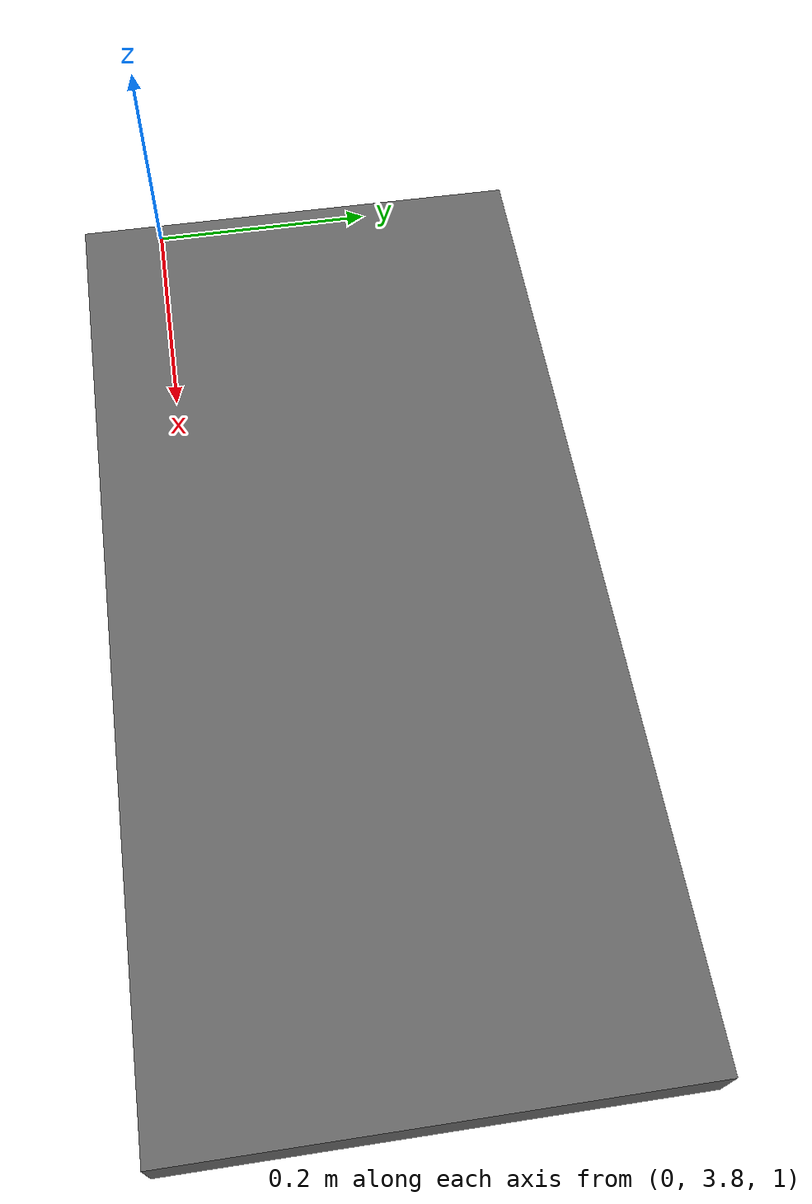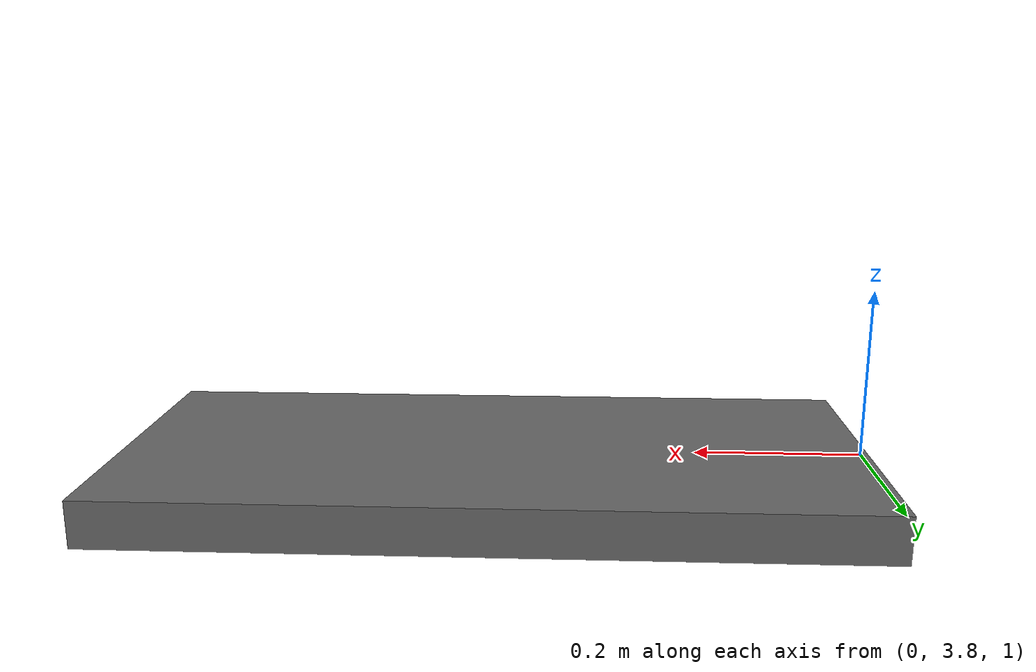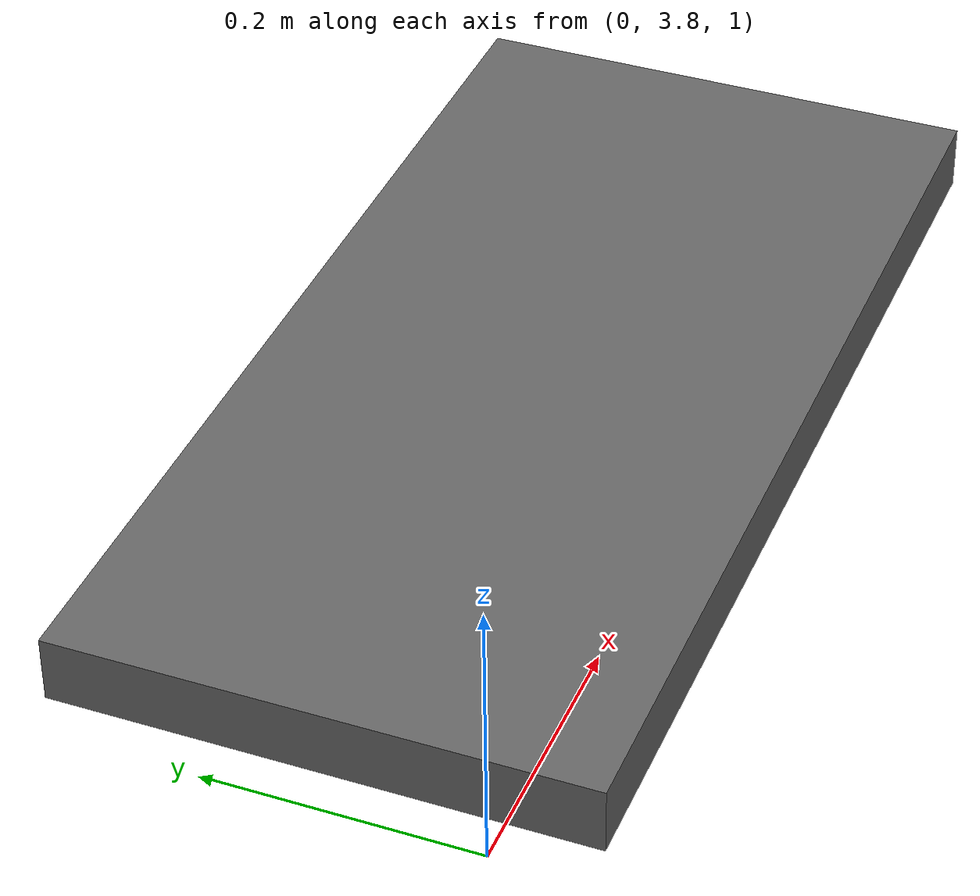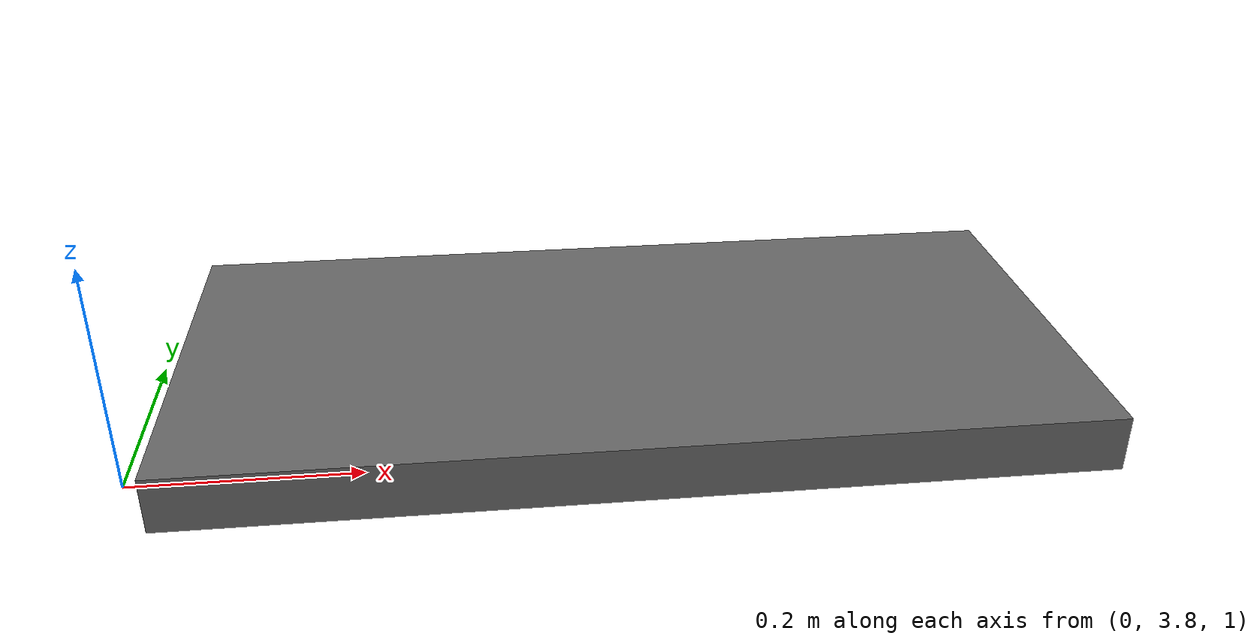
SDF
<?xml version="1.0" ?>
<!-- tmp sdf file generated from LISDF -->
<sdf version="1.9">
  <world name="tmp_world">

<model name="sink_counter_right">
  <static>True</static>
  <pose>0.4350000023841858 3.930000066757202 1.024999976158142 0.0 -0.0 0.0</pose>
  <link name="box">

    <inertial>
      <mass>0</mass>
      <pose>0.0 0.0 0.0 0.0 -0.0 0.0</pose>
      <inertia>
        <ixx>0</ixx>
        <ixy>0</ixy>
        <ixz>0</ixz>
        <iyy>0</iyy>
        <iyz>0</iyz>
        <izz>0</izz>
      </inertia>
    </inertial>
    <collision name="box_collision">>
      <pose>0.0 0.0 0.0 0.0 -0.0 0.0</pose>
      <geometry>
        <box>
          <size>0.8069999814033508 0.39399999380111694 0.05000000074505806</size>
        </box>
      </geometry>

    </collision>
    <visual name="box_visual">
      <pose>0.0 0.0 0.0 0.0 -0.0 0.0</pose>
      <geometry>
        <box>
          <size>0.8069999814033508 0.39399999380111694 0.05000000074505806</size>
        </box>
      </geometry>
      <material>
        <ambient>1.0 1.0 1.0 1.0</ambient>
        <diffuse>0.4000000059604645 0.4000000059604645 0.4000000059604645 1.0</diffuse>
        <specular>0.0 0.0 0.0 1.0</specular>
        <emissive>0.0 0.0 0.0 1.0</emissive>
      </material>
      <cast_shadows>True</cast_shadows>
    </visual>
    <self_collide>True</self_collide>
  </link>

</model>

  </world>
</sdf>
